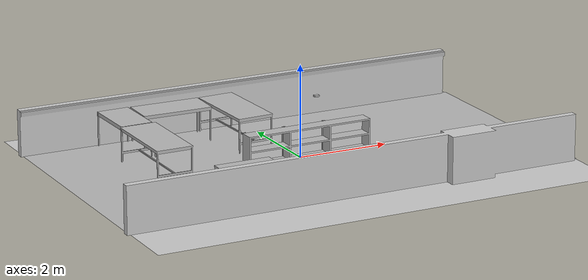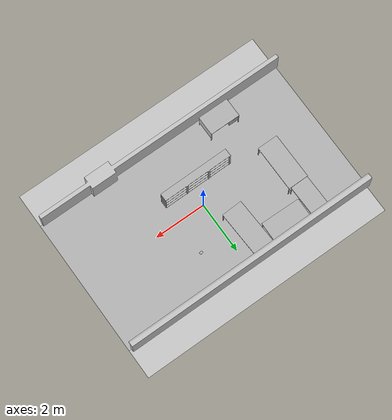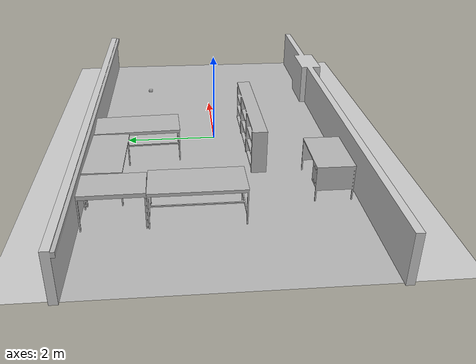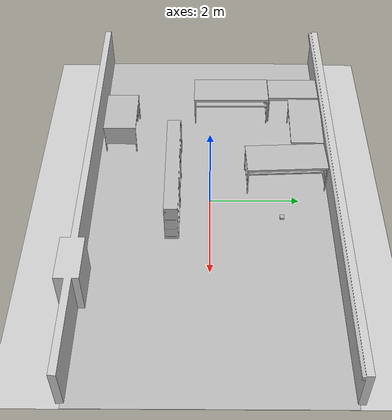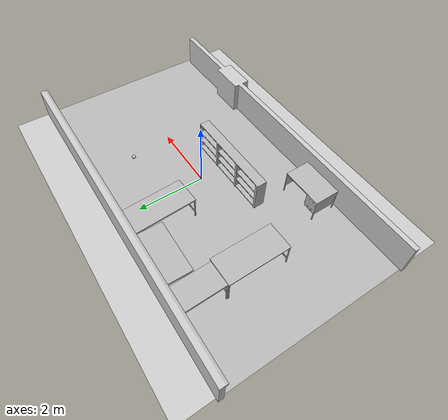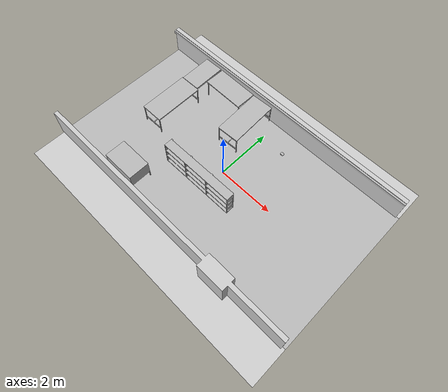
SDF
<sdf version="1.7">
 <world name="default">
  <model name="gplane">
   <link name="body">
    <collision name="gplane_coll">
     <geometry><plane><normal>0 0 1</normal><size>10.075 13.18</size></plane></geometry>
     <surface><contact><ode><kp>1e+06</kp><kd>1</kd></ode></contact></surface>
     <laser_retro>2000</laser_retro>
    </collision>
    <visual name="gplane_vis">
     <geometry><plane><normal>0 0 1</normal><size>10.075 13.18</size></plane></geometry>
     <material>
      <script>
       <uri>model://base_materials/carpet/scripts</uri>
       <uri>model://base_materials/carpet/textures</uri>
       <name>carpet/carpet01</name>
      </script>
     </material>
     <cast_shadows>0</cast_shadows>
    </visual>
    <velocity_decay><linear>0</linear><angular>0</angular></velocity_decay>
   </link>
   <static>1</static>
  </model>
  <model name="Table_03">
   <link name="link_0">
    <inertial>
     <mass>8</mass>
     <inertia>
      <ixx>0.166667</ixx>
      <ixy>0</ixy>
      <ixz>0</ixz>
      <iyy>0.166667</iyy>
      <iyz>0</iyz>
      <izz>0.166667</izz>
     </inertia>
    </inertial>
    <visual name="visual">
     <geometry><mesh><uri>model://BioRoboticsLab/meshes/Table_03.dae</uri><scale>1 1 1</scale></mesh></geometry>
     <material><lighting>1</lighting><shader type="pixel"/></material>
    </visual>
    <collision name="collision">
     <geometry><mesh><uri>model://BioRoboticsLab/meshes/Table_03.dae</uri><scale>1 1 1</scale></mesh></geometry>
     <surface>
      <friction>
       <ode><mu>1</mu><mu2>1</mu2><fdir1>0 0 0</fdir1><slip1>0</slip1><slip2>0</slip2></ode>
       <torsional>
        <coefficient>1</coefficient>
        <patch_radius>0</patch_radius>
        <surface_radius>0</surface_radius>
        <use_patch_radius>1</use_patch_radius>
        <ode><slip>0</slip></ode>
       </torsional>
      </friction>
      <bounce><restitution_coefficient>0</restitution_coefficient><threshold>1e+06</threshold></bounce>
      <contact>
       <collide_without_contact>0</collide_without_contact>
       <collide_without_contact_bitmask>1</collide_without_contact_bitmask>
       <collide_bitmask>1</collide_bitmask>
       <ode>
        <soft_cfm>0</soft_cfm>
        <soft_erp>0.2</soft_erp>
        <kp>1e+13</kp>
        <kd>1</kd>
        <max_vel>0.01</max_vel>
        <min_depth>0</min_depth>
       </ode>
       <bullet>
        <split_impulse>1</split_impulse>
        <split_impulse_penetration_threshold>-0.01</split_impulse_penetration_threshold>
        <soft_cfm>0</soft_cfm>
        <soft_erp>0.2</soft_erp>
        <kp>1e+13</kp>
        <kd>1</kd>
       </bullet>
      </contact>
     </surface>
    </collision>
   </link>
   <static>1</static>
   <pose>-0.655137 1.71075 0 0 -0 1.61624</pose>
  </model>
  <model name="Lab_Mesh">
   <link name="link_0">
    <inertial>
     <mass>100000</mass>
     <inertia>
      <ixx>0.166667</ixx>
      <ixy>0</ixy>
      <ixz>0</ixz>
      <iyy>0.166667</iyy>
      <iyz>0</iyz>
      <izz>0.166667</izz>
     </inertia>
    </inertial>
    <visual name="visual">
     <geometry><mesh><uri>model://BioRoboticsLab/meshes/Lab_Mesh.dae</uri><scale>1 1 1</scale></mesh></geometry>
     <material><lighting>1</lighting><shader type="pixel"/></material>
    </visual>
    <collision name="collision">
     <geometry><mesh><uri>model://BioRoboticsLab/meshes/Lab_Mesh.dae</uri><scale>1 1 1</scale></mesh></geometry>
     <surface>
      <friction>
       <ode><mu>1</mu><mu2>1</mu2><fdir1>0 0 0</fdir1><slip1>0</slip1><slip2>0</slip2></ode>
       <torsional>
        <coefficient>1</coefficient>
        <patch_radius>0</patch_radius>
        <surface_radius>0</surface_radius>
        <use_patch_radius>1</use_patch_radius>
        <ode><slip>0</slip></ode>
       </torsional>
      </friction>
      <bounce><restitution_coefficient>0</restitution_coefficient><threshold>1e+06</threshold></bounce>
      <contact>
       <collide_without_contact>0</collide_without_contact>
       <collide_without_contact_bitmask>1</collide_without_contact_bitmask>
       <collide_bitmask>1</collide_bitmask>
       <ode>
        <soft_cfm>0</soft_cfm>
        <soft_erp>0.2</soft_erp>
        <kp>1e+13</kp>
        <kd>1</kd>
        <max_vel>0.01</max_vel>
        <min_depth>0</min_depth>
       </ode>
       <bullet>
        <split_impulse>1</split_impulse>
        <split_impulse_penetration_threshold>-0.01</split_impulse_penetration_threshold>
        <soft_cfm>0</soft_cfm>
        <soft_erp>0.2</soft_erp>
        <kp>1e+13</kp>
        <kd>1</kd>
       </bullet>
      </contact>
     </surface>
    </collision>
   </link>
   <static>1</static>
   <pose>-0.092622 0.025231 0 0 -0 0</pose>
  </model>
  <model name="Lab_Floor">
   <link name="link_0">
    <inertial>
     <mass>1</mass>
     <inertia>
      <ixx>0.166667</ixx>
      <ixy>0</ixy>
      <ixz>0</ixz>
      <iyy>0.166667</iyy>
      <iyz>0</iyz>
      <izz>0.166667</izz>
     </inertia>
    </inertial>
    <visual name="visual">
     <geometry><mesh><uri>model://BioRoboticsLab/meshes/Lab_Floor.dae</uri><scale>1 1 1</scale></mesh></geometry>
     <material><lighting>1</lighting><shader type="pixel"/></material>
    </visual>
   </link>
   <static>1</static>
   <pose>0 0 0.005 0 -0 0</pose>
  </model>
  <model name="008_pudding_box">
   <link name="link_0">
    <inertial>
     <mass>0.167</mass>
     <inertia>
      <ixx>0.166667</ixx>
      <ixy>0</ixy>
      <ixz>0</ixz>
      <iyy>0.166667</iyy>
      <iyz>0</iyz>
      <izz>0.166667</izz>
     </inertia>
    </inertial>
    <visual name="visual">
     <geometry>
      <mesh><uri>model://YCB_virtual/meshes/008_pudding_box.dae</uri><scale>1 1 1</scale></mesh>
     </geometry>
     <material><lighting>1</lighting><shader type="pixel"/></material>
    </visual>
    <collision name="collision">
     <geometry>
      <mesh><uri>model://YCB_virtual/meshes/008_pudding_box.dae</uri><scale>1 1 1</scale></mesh>
     </geometry>
     <surface>
      <friction>
       <ode><mu>1</mu><mu2>1</mu2><fdir1>0 0 0</fdir1><slip1>0</slip1><slip2>0</slip2></ode>
       <torsional>
        <coefficient>1</coefficient>
        <patch_radius>0</patch_radius>
        <surface_radius>0</surface_radius>
        <use_patch_radius>1</use_patch_radius>
        <ode><slip>0</slip></ode>
       </torsional>
      </friction>
      <bounce><restitution_coefficient>0</restitution_coefficient><threshold>1e+06</threshold></bounce>
      <contact>
       <collide_without_contact>0</collide_without_contact>
       <collide_without_contact_bitmask>1</collide_without_contact_bitmask>
       <collide_bitmask>1</collide_bitmask>
       <ode>
        <soft_cfm>0</soft_cfm>
        <soft_erp>0.2</soft_erp>
        <kp>1e+13</kp>
        <kd>1</kd>
        <max_vel>0.01</max_vel>
        <min_depth>0</min_depth>
       </ode>
       <bullet>
        <split_impulse>1</split_impulse>
        <split_impulse_penetration_threshold>-0.01</split_impulse_penetration_threshold>
        <soft_cfm>0</soft_cfm>
        <soft_erp>0.2</soft_erp>
        <kp>1e+13</kp>
        <kd>1</kd>
       </bullet>
      </contact>
     </surface>
    </collision>
   </link>
   <static>0</static>
   <pose>1.15528 1.49156 0.777077 0.004784 -0.003859 9.4e-05</pose>
  </model>
  <model name="Table_04">
   <link name="link_0">
    <inertial>
     <mass>8</mass>
     <inertia>
      <ixx>0.166667</ixx>
      <ixy>0</ixy>
      <ixz>0</ixz>
      <iyy>0.166667</iyy>
      <iyz>0</iyz>
      <izz>0.166667</izz>
     </inertia>
    </inertial>
    <visual name="visual">
     <geometry><mesh><uri>model://BioRoboticsLab/meshes/Table_04.dae</uri><scale>1 1 1</scale></mesh></geometry>
     <material><lighting>1</lighting><shader type="pixel"/></material>
    </visual>
    <collision name="collision">
     <geometry><mesh><uri>model://BioRoboticsLab/meshes/Table_04.dae</uri><scale>1 1 1</scale></mesh></geometry>
     <surface>
      <friction>
       <ode><mu>1</mu><mu2>1</mu2><fdir1>0 0 0</fdir1><slip1>0</slip1><slip2>0</slip2></ode>
       <torsional>
        <coefficient>1</coefficient>
        <patch_radius>0</patch_radius>
        <surface_radius>0</surface_radius>
        <use_patch_radius>1</use_patch_radius>
        <ode><slip>0</slip></ode>
       </torsional>
      </friction>
      <bounce><restitution_coefficient>0</restitution_coefficient><threshold>1e+06</threshold></bounce>
      <contact>
       <collide_without_contact>0</collide_without_contact>
       <collide_without_contact_bitmask>1</collide_without_contact_bitmask>
       <collide_bitmask>1</collide_bitmask>
       <ode>
        <soft_cfm>0</soft_cfm>
        <soft_erp>0.2</soft_erp>
        <kp>1e+13</kp>
        <kd>1</kd>
        <max_vel>0.01</max_vel>
        <min_depth>0</min_depth>
       </ode>
       <bullet>
        <split_impulse>1</split_impulse>
        <split_impulse_penetration_threshold>-0.01</split_impulse_penetration_threshold>
        <soft_cfm>0</soft_cfm>
        <soft_erp>0.2</soft_erp>
        <kp>1e+13</kp>
        <kd>1</kd>
       </bullet>
      </contact>
     </surface>
    </collision>
   </link>
   <static>1</static>
   <pose>-1.89388 2.2429 0 0 0 -0.017754</pose>
  </model>
  <model name="Table_05">
   <link name="link_0">
    <inertial>
     <mass>7</mass>
     <inertia>
      <ixx>0.166667</ixx>
      <ixy>0</ixy>
      <ixz>0</ixz>
      <iyy>0.166667</iyy>
      <iyz>0</iyz>
      <izz>0.166667</izz>
     </inertia>
    </inertial>
    <visual name="visual">
     <geometry><mesh><uri>model://BioRoboticsLab/meshes/Table_05.dae</uri><scale>1 1 1</scale></mesh></geometry>
     <material><lighting>1</lighting><shader type="pixel"/></material>
    </visual>
    <collision name="collision">
     <geometry><mesh><uri>model://BioRoboticsLab/meshes/Table_05.dae</uri><scale>1 1 1</scale></mesh></geometry>
     <surface>
      <friction>
       <ode><mu>1</mu><mu2>1</mu2><fdir1>0 0 0</fdir1><slip1>0</slip1><slip2>0</slip2></ode>
       <torsional>
        <coefficient>1</coefficient>
        <patch_radius>0</patch_radius>
        <surface_radius>0</surface_radius>
        <use_patch_radius>1</use_patch_radius>
        <ode><slip>0</slip></ode>
       </torsional>
      </friction>
      <bounce><restitution_coefficient>0</restitution_coefficient><threshold>1e+06</threshold></bounce>
      <contact>
       <collide_without_contact>0</collide_without_contact>
       <collide_without_contact_bitmask>1</collide_without_contact_bitmask>
       <collide_bitmask>1</collide_bitmask>
       <ode>
        <soft_cfm>0</soft_cfm>
        <soft_erp>0.2</soft_erp>
        <kp>1e+13</kp>
        <kd>1</kd>
        <max_vel>0.01</max_vel>
        <min_depth>0</min_depth>
       </ode>
       <bullet>
        <split_impulse>1</split_impulse>
        <split_impulse_penetration_threshold>-0.01</split_impulse_penetration_threshold>
        <soft_cfm>0</soft_cfm>
        <soft_erp>0.2</soft_erp>
        <kp>1e+13</kp>
        <kd>1</kd>
       </bullet>
      </contact>
     </surface>
    </collision>
   </link>
   <static>1</static>
   <pose>-3.05814 2.02214 0 0 -0 1.58727</pose>
  </model>
  <model name="Table_03_0">
   <link name="link_0">
    <inertial>
     <mass>8</mass>
     <inertia>
      <ixx>0.166667</ixx>
      <ixy>0</ixy>
      <ixz>0</ixz>
      <iyy>0.166667</iyy>
      <iyz>0</iyz>
      <izz>0.166667</izz>
     </inertia>
    </inertial>
    <visual name="visual">
     <geometry><mesh><uri>model://BioRoboticsLab/meshes/Table_03.dae</uri><scale>1 1 1</scale></mesh></geometry>
     <material><lighting>1</lighting><shader type="pixel"/></material>
    </visual>
    <collision name="collision">
     <geometry><mesh><uri>model://BioRoboticsLab/meshes/Table_03.dae</uri><scale>1 1 1</scale></mesh></geometry>
     <surface>
      <friction>
       <ode><mu>1</mu><mu2>1</mu2><fdir1>0 0 0</fdir1><slip1>0</slip1><slip2>0</slip2></ode>
       <torsional>
        <coefficient>1</coefficient>
        <patch_radius>0</patch_radius>
        <surface_radius>0</surface_radius>
        <use_patch_radius>1</use_patch_radius>
        <ode><slip>0</slip></ode>
       </torsional>
      </friction>
      <bounce><restitution_coefficient>0</restitution_coefficient><threshold>1e+06</threshold></bounce>
      <contact>
       <collide_without_contact>0</collide_without_contact>
       <collide_without_contact_bitmask>1</collide_without_contact_bitmask>
       <collide_bitmask>1</collide_bitmask>
       <ode>
        <soft_cfm>0</soft_cfm>
        <soft_erp>0.2</soft_erp>
        <kp>1e+13</kp>
        <kd>1</kd>
        <max_vel>0.01</max_vel>
        <min_depth>0</min_depth>
       </ode>
       <bullet>
        <split_impulse>1</split_impulse>
        <split_impulse_penetration_threshold>-0.01</split_impulse_penetration_threshold>
        <soft_cfm>0</soft_cfm>
        <soft_erp>0.2</soft_erp>
        <kp>1e+13</kp>
        <kd>1</kd>
       </bullet>
      </contact>
     </surface>
    </collision>
   </link>
   <static>1</static>
   <pose>-3.02131 0.512496 0 0 0 -1.56459</pose>
  </model>
  <model name="Desk_04">
   <link name="link_0">
    <inertial>
     <mass>15</mass>
     <inertia>
      <ixx>0.166667</ixx>
      <ixy>0</ixy>
      <ixz>0</ixz>
      <iyy>0.166667</iyy>
      <iyz>0</iyz>
      <izz>0.166667</izz>
     </inertia>
    </inertial>
    <visual name="visual">
     <geometry><mesh><uri>model://BioRoboticsLab/meshes/Desk_04.dae</uri><scale>1 1 1</scale></mesh></geometry>
     <material><lighting>1</lighting><shader type="pixel"/></material>
    </visual>
    <collision name="collision">
     <geometry><mesh><uri>model://BioRoboticsLab/meshes/Desk_04.dae</uri><scale>1 1 1</scale></mesh></geometry>
     <surface>
      <friction>
       <ode><mu>1</mu><mu2>1</mu2><fdir1>0 0 0</fdir1><slip1>0</slip1><slip2>0</slip2></ode>
       <torsional>
        <coefficient>1</coefficient>
        <patch_radius>0</patch_radius>
        <surface_radius>0</surface_radius>
        <use_patch_radius>1</use_patch_radius>
        <ode><slip>0</slip></ode>
       </torsional>
      </friction>
      <bounce><restitution_coefficient>0</restitution_coefficient><threshold>1e+06</threshold></bounce>
      <contact>
       <collide_without_contact>0</collide_without_contact>
       <collide_without_contact_bitmask>1</collide_without_contact_bitmask>
       <collide_bitmask>1</collide_bitmask>
       <ode>
        <soft_cfm>0</soft_cfm>
        <soft_erp>0.2</soft_erp>
        <kp>1e+13</kp>
        <kd>1</kd>
        <max_vel>0.01</max_vel>
        <min_depth>0</min_depth>
       </ode>
       <bullet>
        <split_impulse>1</split_impulse>
        <split_impulse_penetration_threshold>-0.01</split_impulse_penetration_threshold>
        <soft_cfm>0</soft_cfm>
        <soft_erp>0.2</soft_erp>
        <kp>1e+13</kp>
        <kd>1</kd>
       </bullet>
      </contact>
     </surface>
    </collision>
   </link>
   <static>1</static>
   <pose>-2.19478 -2.11643 0 0 -0 0</pose>
  </model>
  <model name="Shelf_01_center">
   <link name="link_0">
    <inertial>
     <mass>30</mass>
     <inertia>
      <ixx>0.166667</ixx>
      <ixy>0</ixy>
      <ixz>0</ixz>
      <iyy>0.166667</iyy>
      <iyz>0</iyz>
      <izz>0.166667</izz>
     </inertia>
    </inertial>
    <visual name="visual">
     <geometry>
      <mesh><uri>model://BioRoboticsLab/meshes/Shelf_1_center.dae</uri><scale>1 1 1</scale></mesh>
     </geometry>
     <material><lighting>1</lighting><shader type="pixel"/></material>
    </visual>
    <collision name="collision">
     <geometry>
      <mesh><uri>model://BioRoboticsLab/meshes/Shelf_1_center.dae</uri><scale>1 1 1</scale></mesh>
     </geometry>
     <surface>
      <friction>
       <ode><mu>1</mu><mu2>1</mu2><fdir1>0 0 0</fdir1><slip1>0</slip1><slip2>0</slip2></ode>
       <torsional>
        <coefficient>1</coefficient>
        <patch_radius>0</patch_radius>
        <surface_radius>0</surface_radius>
        <use_patch_radius>1</use_patch_radius>
        <ode><slip>0</slip></ode>
       </torsional>
      </friction>
      <bounce><restitution_coefficient>0</restitution_coefficient><threshold>1e+06</threshold></bounce>
      <contact>
       <collide_without_contact>0</collide_without_contact>
       <collide_without_contact_bitmask>1</collide_without_contact_bitmask>
       <collide_bitmask>1</collide_bitmask>
       <ode>
        <soft_cfm>0</soft_cfm>
        <soft_erp>0.2</soft_erp>
        <kp>1e+13</kp>
        <kd>1</kd>
        <max_vel>0.01</max_vel>
        <min_depth>0</min_depth>
       </ode>
       <bullet>
        <split_impulse>1</split_impulse>
        <split_impulse_penetration_threshold>-0.01</split_impulse_penetration_threshold>
        <soft_cfm>0</soft_cfm>
        <soft_erp>0.2</soft_erp>
        <kp>1e+13</kp>
        <kd>1</kd>
       </bullet>
      </contact>
     </surface>
    </collision>
   </link>
   <static>1</static>
   <pose>-0.276716 -0.818783 0 0 -0 0.008618</pose>
  </model>
 </world>
</sdf>
